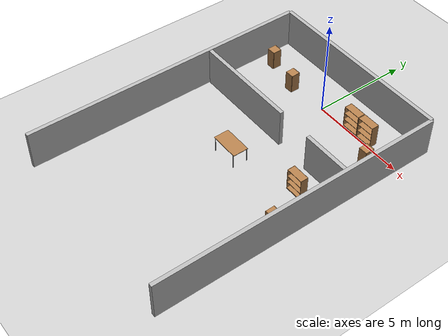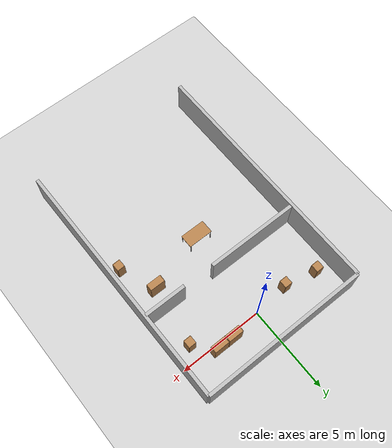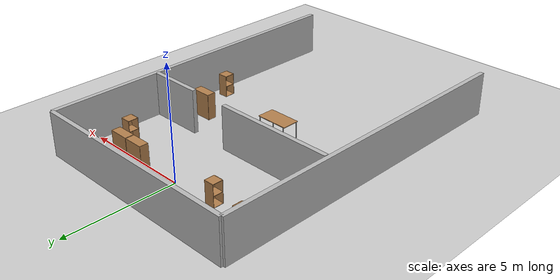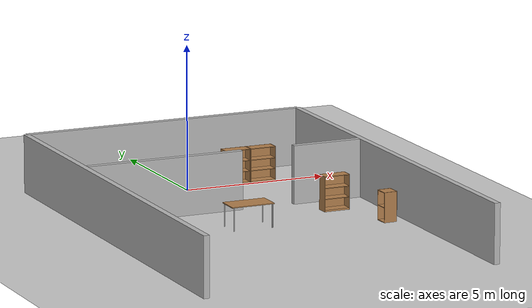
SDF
<sdf version="1.6">
 <world name="default">
  <model name="ground_plane">
   <static>1</static>
   <link name="link">
    <collision name="collision">
     <geometry><plane><normal>0 0 1</normal><size>100 100</size></plane></geometry>
     <surface><friction><ode><mu>100</mu><mu2>50</mu2></ode></friction></surface>
    </collision>
    <visual name="visual">
     <cast_shadows>0</cast_shadows>
     <geometry><plane><normal>0 0 1</normal><size>100 100</size></plane></geometry>
     <material>
      <script><uri>file://media/materials/scripts/gazebo.material</uri><name>Gazebo/Grey</name></script>
     </material>
    </visual>
    <velocity_decay><linear>0</linear><angular>0</angular></velocity_decay>
   </link>
  </model>
  <model name="wall_2_model">
   <pose>0 2 1 0 -0 0</pose>
   <static>1</static>
   <link name="wall_2_body">
    <inertial>
     <mass>1</mass>
     <inertia><ixx>1</ixx><ixy>0</ixy><ixz>0</ixz><iyy>1</iyy><iyz>0</iyz><izz>1</izz></inertia>
    </inertial>
    <collision name="collision"><geometry><box><size>10 0.2 2</size></box></geometry></collision>
    <visual name="visual"><geometry><box><size>10 0.2 2</size></box></geometry></visual>
    <velocity_decay><linear>0</linear><angular>0</angular></velocity_decay>
   </link>
  </model>
  <model name="wall_3_model">
   <pose>-5 -5.5 1 0 -0 0</pose>
   <static>1</static>
   <link name="wall_3_body">
    <inertial>
     <mass>1</mass>
     <inertia><ixx>1</ixx><ixy>0</ixy><ixz>0</ixz><iyy>1</iyy><iyz>0</iyz><izz>1</izz></inertia>
    </inertial>
    <collision name="collision"><geometry><box><size>0.2 15 2</size></box></geometry></collision>
    <visual name="visual"><geometry><box><size>0.2 15 2</size></box></geometry></visual>
    <velocity_decay><linear>0</linear><angular>0</angular></velocity_decay>
   </link>
  </model>
  <model name="wall_4_model">
   <pose>5 -5.5 1 0 -0 0</pose>
   <static>1</static>
   <link name="wall_4_body">
    <inertial>
     <mass>1</mass>
     <inertia><ixx>1</ixx><ixy>0</ixy><ixz>0</ixz><iyy>1</iyy><iyz>0</iyz><izz>1</izz></inertia>
    </inertial>
    <collision name="collision"><geometry><box><size>0.2 15 2</size></box></geometry></collision>
    <visual name="visual"><geometry><box><size>0.2 15 2</size></box></geometry></visual>
    <velocity_decay><linear>0</linear><angular>0</angular></velocity_decay>
   </link>
  </model>
  <model name="wall_5_model">
   <pose>-2.12856 -3.08419 1 0 -0 0</pose>
   <static>1</static>
   <link name="wall_5_body">
    <inertial>
     <mass>1</mass>
     <inertia><ixx>1</ixx><ixy>0</ixy><ixz>0</ixz><iyy>1</iyy><iyz>0</iyz><izz>1</izz></inertia>
    </inertial>
    <collision name="collision"><geometry><box><size>5.5 0.2 2</size></box></geometry></collision>
    <visual name="visual"><geometry><box><size>5.5 0.2 2</size></box></geometry></visual>
    <velocity_decay><linear>0</linear><angular>0</angular></velocity_decay>
   </link>
  </model>
  <model name="wall_6_model">
   <pose>3.72085 -3.12187 1 0 -0 0</pose>
   <static>1</static>
   <link name="wall_6_body">
    <inertial>
     <mass>1</mass>
     <inertia><ixx>1</ixx><ixy>0</ixy><ixz>0</ixz><iyy>1</iyy><iyz>0</iyz><izz>1</izz></inertia>
    </inertial>
    <collision name="collision"><geometry><box><size>2.5 0.2 2</size></box></geometry></collision>
    <visual name="visual"><geometry><box><size>2.5 0.2 2</size></box></geometry></visual>
    <velocity_decay><linear>0</linear><angular>0</angular></velocity_decay>
   </link>
  </model>
  <model name="cabinet">
   <static>0</static>
   <link name="cabinet_bottom_plate">
    <inertial>
     <pose>0 0 -1 0 -0 0</pose>
     <inertia><ixx>2.05</ixx><ixy>0</ixy><ixz>0</ixz><iyy>2.05</iyy><iyz>0</iyz><izz>2.05</izz></inertia>
     <mass>25</mass>
    </inertial>
    <collision name="cabinet_bottom_plate_geom">
     <pose>0 0 0.01 0 -0 0</pose>
     <geometry><box><size>0.45 0.45 0.02</size></box></geometry>
    </collision>
    <visual name="cabinet_bottom_plate_geom_visual">
     <pose>0 0 0.01 0 -0 0</pose>
     <geometry><box><size>0.45 0.45 0.02</size></box></geometry>
     <material>
      <script><uri>file://media/materials/scripts/gazebo.material</uri><name>Gazebo/Wood</name></script>
     </material>
    </visual>
    <collision name="cabinet_bottom_plate_geom_cabinet_back_plate">
     <pose>0.235 0 0.51 0 -0 0</pose>
     <geometry><box><size>0.02 0.45 1.02</size></box></geometry>
    </collision>
    <visual name="cabinet_bottom_plate_geom_cabinet_back_plate_visual">
     <pose>0.235 0 0.51 0 -0 0</pose>
     <geometry><box><size>0.02 0.45 1.02</size></box></geometry>
     <material>
      <script><uri>file://media/materials/scripts/gazebo.material</uri><name>Gazebo/Wood</name></script>
     </material>
    </visual>
    <collision name="cabinet_bottom_plate_geom_cabinet_left_plate">
     <pose>0 0.235 0.51 0 -0 0</pose>
     <geometry><box><size>0.45 0.02 1.02</size></box></geometry>
    </collision>
    <visual name="cabinet_bottom_plate_geom_cabinet_left_plate_visual">
     <pose>0 0.235 0.51 0 -0 0</pose>
     <geometry><box><size>0.45 0.02 1.02</size></box></geometry>
     <material>
      <script><uri>file://media/materials/scripts/gazebo.material</uri><name>Gazebo/Wood</name></script>
     </material>
    </visual>
    <collision name="cabinet_bottom_plate_geom_cabinet_middle_plate">
     <pose>0 0 0.51 0 -0 0</pose>
     <geometry><box><size>0.45 0.45 0.02</size></box></geometry>
    </collision>
    <visual name="cabinet_bottom_plate_geom_cabinet_middle_plate_visual">
     <pose>0 0 0.51 0 -0 0</pose>
     <geometry><box><size>0.45 0.45 0.02</size></box></geometry>
     <material>
      <script><uri>file://media/materials/scripts/gazebo.material</uri><name>Gazebo/Wood</name></script>
     </material>
    </visual>
    <collision name="cabinet_bottom_plate_geom_cabinet_right_plate">
     <pose>0 -0.235 0.51 0 -0 0</pose>
     <geometry><box><size>0.45 0.02 1.02</size></box></geometry>
    </collision>
    <visual name="cabinet_bottom_plate_geom_cabinet_right_plate_visual">
     <pose>0 -0.235 0.51 0 -0 0</pose>
     <geometry><box><size>0.45 0.02 1.02</size></box></geometry>
     <material>
      <script><uri>file://media/materials/scripts/gazebo.material</uri><name>Gazebo/Wood</name></script>
     </material>
    </visual>
    <collision name="cabinet_bottom_plate_geom_cabinet_top_plate">
     <pose>0 0 1.01 0 -0 0</pose>
     <geometry><box><size>0.45 0.45 0.02</size></box></geometry>
    </collision>
    <visual name="cabinet_bottom_plate_geom_cabinet_top_plate_visual">
     <pose>0 0 1.01 0 -0 0</pose>
     <geometry><box><size>0.45 0.45 0.02</size></box></geometry>
     <material>
      <script><uri>file://media/materials/scripts/gazebo.material</uri><name>Gazebo/Wood</name></script>
     </material>
    </visual>
    <velocity_decay><linear>0</linear><angular>0</angular></velocity_decay>
   </link>
   <pose>-2.08996 -0.165032 -0 0 -1e-06 0.009379</pose>
  </model>
  <model name="bookshelf">
   <static>0</static>
   <link name="link">
    <inertial>
     <mass>1</mass>
     <inertia><ixx>1</ixx><ixy>0</ixy><ixz>0</ixz><iyy>1</iyy><iyz>0</iyz><izz>1</izz></inertia>
    </inertial>
    <collision name="back">
     <pose>0 0.005 0.6 0 -0 0</pose>
     <geometry><box><size>0.9 0.01 1.2</size></box></geometry>
    </collision>
    <visual name="visual1">
     <pose>0 0.005 0.6 0 -0 0</pose>
     <geometry><box><size>0.9 0.01 1.2</size></box></geometry>
     <material>
      <script><uri>file://media/materials/scripts/gazebo.material</uri><name>Gazebo/Wood</name></script>
     </material>
    </visual>
    <collision name="left_side">
     <pose>0.45 -0.195 0.6 0 -0 0</pose>
     <geometry><box><size>0.02 0.4 1.2</size></box></geometry>
    </collision>
    <visual name="visual2">
     <pose>0.45 -0.195 0.6 0 -0 0</pose>
     <geometry><box><size>0.02 0.4 1.2</size></box></geometry>
     <material>
      <script><uri>file://media/materials/scripts/gazebo.material</uri><name>Gazebo/Wood</name></script>
     </material>
    </visual>
    <collision name="right_side">
     <pose>-0.45 -0.195 0.6 0 -0 0</pose>
     <geometry><box><size>0.02 0.4 1.2</size></box></geometry>
    </collision>
    <visual name="visual3">
     <pose>-0.45 -0.195 0.6 0 -0 0</pose>
     <geometry><box><size>0.02 0.4 1.2</size></box></geometry>
     <material>
      <script><uri>file://media/materials/scripts/gazebo.material</uri><name>Gazebo/Wood</name></script>
     </material>
    </visual>
    <collision name="bottom">
     <pose>0 -0.195 0.03 0 -0 0</pose>
     <geometry><box><size>0.88 0.4 0.06</size></box></geometry>
    </collision>
    <visual name="visual4">
     <pose>0 -0.195 0.03 0 -0 0</pose>
     <geometry><box><size>0.88 0.4 0.06</size></box></geometry>
     <material>
      <script><uri>file://media/materials/scripts/gazebo.material</uri><name>Gazebo/Wood</name></script>
     </material>
    </visual>
    <collision name="top">
     <pose>0 -0.195 1.19 0 -0 0</pose>
     <geometry><box><size>0.88 0.4 0.02</size></box></geometry>
    </collision>
    <visual name="visual5">
     <pose>0 -0.195 1.19 0 -0 0</pose>
     <geometry><box><size>0.88 0.4 0.02</size></box></geometry>
     <material>
      <script><uri>file://media/materials/scripts/gazebo.material</uri><name>Gazebo/Wood</name></script>
     </material>
    </visual>
    <collision name="low_shelf">
     <pose>0 -0.195 0.43 0 -0 0</pose>
     <geometry><box><size>0.88 0.4 0.02</size></box></geometry>
    </collision>
    <visual name="visual6">
     <pose>0 -0.195 0.43 0 -0 0</pose>
     <geometry><box><size>0.88 0.4 0.02</size></box></geometry>
     <material>
      <script><uri>file://media/materials/scripts/gazebo.material</uri><name>Gazebo/Wood</name></script>
     </material>
    </visual>
    <collision name="high_shelf">
     <pose>0 -0.195 0.8 0 -0 0</pose>
     <geometry><box><size>0.88 0.4 0.02</size></box></geometry>
    </collision>
    <visual name="visual7">
     <pose>0 -0.195 0.8 0 -0 0</pose>
     <geometry><box><size>0.88 0.4 0.02</size></box></geometry>
     <material>
      <script><uri>file://media/materials/scripts/gazebo.material</uri><name>Gazebo/Wood</name></script>
     </material>
    </visual>
    <velocity_decay><linear>0</linear><angular>0</angular></velocity_decay>
   </link>
   <pose>3.39483 -4.21649 0 -6e-06 0 0</pose>
  </model>
  <model name="bookshelf_0">
   <static>0</static>
   <link name="link">
    <inertial>
     <mass>1</mass>
     <inertia><ixx>1</ixx><ixy>0</ixy><ixz>0</ixz><iyy>1</iyy><iyz>0</iyz><izz>1</izz></inertia>
    </inertial>
    <collision name="back">
     <pose>0 0.005 0.6 0 -0 0</pose>
     <geometry><box><size>0.9 0.01 1.2</size></box></geometry>
    </collision>
    <visual name="visual1">
     <pose>0 0.005 0.6 0 -0 0</pose>
     <geometry><box><size>0.9 0.01 1.2</size></box></geometry>
     <material>
      <script><uri>file://media/materials/scripts/gazebo.material</uri><name>Gazebo/Wood</name></script>
     </material>
    </visual>
    <collision name="left_side">
     <pose>0.45 -0.195 0.6 0 -0 0</pose>
     <geometry><box><size>0.02 0.4 1.2</size></box></geometry>
    </collision>
    <visual name="visual2">
     <pose>0.45 -0.195 0.6 0 -0 0</pose>
     <geometry><box><size>0.02 0.4 1.2</size></box></geometry>
     <material>
      <script><uri>file://media/materials/scripts/gazebo.material</uri><name>Gazebo/Wood</name></script>
     </material>
    </visual>
    <collision name="right_side">
     <pose>-0.45 -0.195 0.6 0 -0 0</pose>
     <geometry><box><size>0.02 0.4 1.2</size></box></geometry>
    </collision>
    <visual name="visual3">
     <pose>-0.45 -0.195 0.6 0 -0 0</pose>
     <geometry><box><size>0.02 0.4 1.2</size></box></geometry>
     <material>
      <script><uri>file://media/materials/scripts/gazebo.material</uri><name>Gazebo/Wood</name></script>
     </material>
    </visual>
    <collision name="bottom">
     <pose>0 -0.195 0.03 0 -0 0</pose>
     <geometry><box><size>0.88 0.4 0.06</size></box></geometry>
    </collision>
    <visual name="visual4">
     <pose>0 -0.195 0.03 0 -0 0</pose>
     <geometry><box><size>0.88 0.4 0.06</size></box></geometry>
     <material>
      <script><uri>file://media/materials/scripts/gazebo.material</uri><name>Gazebo/Wood</name></script>
     </material>
    </visual>
    <collision name="top">
     <pose>0 -0.195 1.19 0 -0 0</pose>
     <geometry><box><size>0.88 0.4 0.02</size></box></geometry>
    </collision>
    <visual name="visual5">
     <pose>0 -0.195 1.19 0 -0 0</pose>
     <geometry><box><size>0.88 0.4 0.02</size></box></geometry>
     <material>
      <script><uri>file://media/materials/scripts/gazebo.material</uri><name>Gazebo/Wood</name></script>
     </material>
    </visual>
    <collision name="low_shelf">
     <pose>0 -0.195 0.43 0 -0 0</pose>
     <geometry><box><size>0.88 0.4 0.02</size></box></geometry>
    </collision>
    <visual name="visual6">
     <pose>0 -0.195 0.43 0 -0 0</pose>
     <geometry><box><size>0.88 0.4 0.02</size></box></geometry>
     <material>
      <script><uri>file://media/materials/scripts/gazebo.material</uri><name>Gazebo/Wood</name></script>
     </material>
    </visual>
    <collision name="high_shelf">
     <pose>0 -0.195 0.8 0 -0 0</pose>
     <geometry><box><size>0.88 0.4 0.02</size></box></geometry>
    </collision>
    <visual name="visual7">
     <pose>0 -0.195 0.8 0 -0 0</pose>
     <geometry><box><size>0.88 0.4 0.02</size></box></geometry>
     <material>
      <script><uri>file://media/materials/scripts/gazebo.material</uri><name>Gazebo/Wood</name></script>
     </material>
    </visual>
    <velocity_decay><linear>0</linear><angular>0</angular></velocity_decay>
   </link>
   <pose>1.90175 0.470127 1e-06 2e-06 -0 0</pose>
  </model>
  <model name="bookshelf_1">
   <static>0</static>
   <link name="link">
    <inertial>
     <mass>1</mass>
     <inertia><ixx>1</ixx><ixy>0</ixy><ixz>0</ixz><iyy>1</iyy><iyz>0</iyz><izz>1</izz></inertia>
    </inertial>
    <collision name="back">
     <pose>0 0.005 0.6 0 -0 0</pose>
     <geometry><box><size>0.9 0.01 1.2</size></box></geometry>
    </collision>
    <visual name="visual1">
     <pose>0 0.005 0.6 0 -0 0</pose>
     <geometry><box><size>0.9 0.01 1.2</size></box></geometry>
     <material>
      <script><uri>file://media/materials/scripts/gazebo.material</uri><name>Gazebo/Wood</name></script>
     </material>
    </visual>
    <collision name="left_side">
     <pose>0.45 -0.195 0.6 0 -0 0</pose>
     <geometry><box><size>0.02 0.4 1.2</size></box></geometry>
    </collision>
    <visual name="visual2">
     <pose>0.45 -0.195 0.6 0 -0 0</pose>
     <geometry><box><size>0.02 0.4 1.2</size></box></geometry>
     <material>
      <script><uri>file://media/materials/scripts/gazebo.material</uri><name>Gazebo/Wood</name></script>
     </material>
    </visual>
    <collision name="right_side">
     <pose>-0.45 -0.195 0.6 0 -0 0</pose>
     <geometry><box><size>0.02 0.4 1.2</size></box></geometry>
    </collision>
    <visual name="visual3">
     <pose>-0.45 -0.195 0.6 0 -0 0</pose>
     <geometry><box><size>0.02 0.4 1.2</size></box></geometry>
     <material>
      <script><uri>file://media/materials/scripts/gazebo.material</uri><name>Gazebo/Wood</name></script>
     </material>
    </visual>
    <collision name="bottom">
     <pose>0 -0.195 0.03 0 -0 0</pose>
     <geometry><box><size>0.88 0.4 0.06</size></box></geometry>
    </collision>
    <visual name="visual4">
     <pose>0 -0.195 0.03 0 -0 0</pose>
     <geometry><box><size>0.88 0.4 0.06</size></box></geometry>
     <material>
      <script><uri>file://media/materials/scripts/gazebo.material</uri><name>Gazebo/Wood</name></script>
     </material>
    </visual>
    <collision name="top">
     <pose>0 -0.195 1.19 0 -0 0</pose>
     <geometry><box><size>0.88 0.4 0.02</size></box></geometry>
    </collision>
    <visual name="visual5">
     <pose>0 -0.195 1.19 0 -0 0</pose>
     <geometry><box><size>0.88 0.4 0.02</size></box></geometry>
     <material>
      <script><uri>file://media/materials/scripts/gazebo.material</uri><name>Gazebo/Wood</name></script>
     </material>
    </visual>
    <collision name="low_shelf">
     <pose>0 -0.195 0.43 0 -0 0</pose>
     <geometry><box><size>0.88 0.4 0.02</size></box></geometry>
    </collision>
    <visual name="visual6">
     <pose>0 -0.195 0.43 0 -0 0</pose>
     <geometry><box><size>0.88 0.4 0.02</size></box></geometry>
     <material>
      <script><uri>file://media/materials/scripts/gazebo.material</uri><name>Gazebo/Wood</name></script>
     </material>
    </visual>
    <collision name="high_shelf">
     <pose>0 -0.195 0.8 0 -0 0</pose>
     <geometry><box><size>0.88 0.4 0.02</size></box></geometry>
    </collision>
    <visual name="visual7">
     <pose>0 -0.195 0.8 0 -0 0</pose>
     <geometry><box><size>0.88 0.4 0.02</size></box></geometry>
     <material>
      <script><uri>file://media/materials/scripts/gazebo.material</uri><name>Gazebo/Wood</name></script>
     </material>
    </visual>
    <velocity_decay><linear>0</linear><angular>0</angular></velocity_decay>
   </link>
   <pose>2.83824 0.467818 -1e-06 -6.6e-05 3e-06 0</pose>
  </model>
  <model name="cabinet_2">
   <static>0</static>
   <link name="cabinet_bottom_plate">
    <inertial>
     <pose>0 0 -1 0 -0 0</pose>
     <inertia><ixx>2.05</ixx><ixy>0</ixy><ixz>0</ixz><iyy>2.05</iyy><iyz>0</iyz><izz>2.05</izz></inertia>
     <mass>25</mass>
    </inertial>
    <collision name="cabinet_bottom_plate_geom">
     <pose>0 0 0.01 0 -0 0</pose>
     <geometry><box><size>0.45 0.45 0.02</size></box></geometry>
    </collision>
    <visual name="cabinet_bottom_plate_geom_visual">
     <pose>0 0 0.01 0 -0 0</pose>
     <geometry><box><size>0.45 0.45 0.02</size></box></geometry>
     <material>
      <script><uri>file://media/materials/scripts/gazebo.material</uri><name>Gazebo/Wood</name></script>
     </material>
    </visual>
    <collision name="cabinet_bottom_plate_geom_cabinet_back_plate">
     <pose>0.235 0 0.51 0 -0 0</pose>
     <geometry><box><size>0.02 0.45 1.02</size></box></geometry>
    </collision>
    <visual name="cabinet_bottom_plate_geom_cabinet_back_plate_visual">
     <pose>0.235 0 0.51 0 -0 0</pose>
     <geometry><box><size>0.02 0.45 1.02</size></box></geometry>
     <material>
      <script><uri>file://media/materials/scripts/gazebo.material</uri><name>Gazebo/Wood</name></script>
     </material>
    </visual>
    <collision name="cabinet_bottom_plate_geom_cabinet_left_plate">
     <pose>0 0.235 0.51 0 -0 0</pose>
     <geometry><box><size>0.45 0.02 1.02</size></box></geometry>
    </collision>
    <visual name="cabinet_bottom_plate_geom_cabinet_left_plate_visual">
     <pose>0 0.235 0.51 0 -0 0</pose>
     <geometry><box><size>0.45 0.02 1.02</size></box></geometry>
     <material>
      <script><uri>file://media/materials/scripts/gazebo.material</uri><name>Gazebo/Wood</name></script>
     </material>
    </visual>
    <collision name="cabinet_bottom_plate_geom_cabinet_middle_plate">
     <pose>0 0 0.51 0 -0 0</pose>
     <geometry><box><size>0.45 0.45 0.02</size></box></geometry>
    </collision>
    <visual name="cabinet_bottom_plate_geom_cabinet_middle_plate_visual">
     <pose>0 0 0.51 0 -0 0</pose>
     <geometry><box><size>0.45 0.45 0.02</size></box></geometry>
     <material>
      <script><uri>file://media/materials/scripts/gazebo.material</uri><name>Gazebo/Wood</name></script>
     </material>
    </visual>
    <collision name="cabinet_bottom_plate_geom_cabinet_right_plate">
     <pose>0 -0.235 0.51 0 -0 0</pose>
     <geometry><box><size>0.45 0.02 1.02</size></box></geometry>
    </collision>
    <visual name="cabinet_bottom_plate_geom_cabinet_right_plate_visual">
     <pose>0 -0.235 0.51 0 -0 0</pose>
     <geometry><box><size>0.45 0.02 1.02</size></box></geometry>
     <material>
      <script><uri>file://media/materials/scripts/gazebo.material</uri><name>Gazebo/Wood</name></script>
     </material>
    </visual>
    <collision name="cabinet_bottom_plate_geom_cabinet_top_plate">
     <pose>0 0 1.01 0 -0 0</pose>
     <geometry><box><size>0.45 0.45 0.02</size></box></geometry>
    </collision>
    <visual name="cabinet_bottom_plate_geom_cabinet_top_plate_visual">
     <pose>0 0 1.01 0 -0 0</pose>
     <geometry><box><size>0.45 0.45 0.02</size></box></geometry>
     <material>
      <script><uri>file://media/materials/scripts/gazebo.material</uri><name>Gazebo/Wood</name></script>
     </material>
    </visual>
    <velocity_decay><linear>0</linear><angular>0</angular></velocity_decay>
   </link>
   <pose>4.31253 -6.49522 -0 -1e-06 0 0.029125</pose>
  </model>
  <model name="table_0">
   <static>0</static>
   <link name="link">
    <collision name="surface">
     <pose>0 0 0.9 0 -0 0</pose>
     <geometry><box><size>1.5 0.8 0.03</size></box></geometry>
    </collision>
    <visual name="visual1">
     <pose>0 0 0.9 0 -0 0</pose>
     <geometry><box><size>1.5 0.8 0.03</size></box></geometry>
     <material>
      <script><uri>file://media/materials/scripts/gazebo.material</uri><name>Gazebo/Wood</name></script>
     </material>
    </visual>
    <collision name="front_left_leg">
     <pose>0.68 0.38 0.5 0 -0 0</pose>
     <geometry><cylinder><radius>0.02</radius><length>0.8</length></cylinder></geometry>
    </collision>
    <visual name="front_left_leg">
     <pose>0.68 0.38 0.5 0 -0 0</pose>
     <geometry><cylinder><radius>0.02</radius><length>0.8</length></cylinder></geometry>
     <material>
      <script><uri>file://media/materials/scripts/gazebo.material</uri><name>Gazebo/Grey</name></script>
     </material>
    </visual>
    <collision name="front_right_leg">
     <pose>0.68 -0.38 0.5 0 -0 0</pose>
     <geometry><cylinder><radius>0.02</radius><length>0.8</length></cylinder></geometry>
    </collision>
    <visual name="front_right_leg">
     <pose>0.68 -0.38 0.5 0 -0 0</pose>
     <geometry><cylinder><radius>0.02</radius><length>0.8</length></cylinder></geometry>
     <material>
      <script><uri>file://media/materials/scripts/gazebo.material</uri><name>Gazebo/Grey</name></script>
     </material>
    </visual>
    <collision name="back_right_leg">
     <pose>-0.68 -0.38 0.5 0 -0 0</pose>
     <geometry><cylinder><radius>0.02</radius><length>0.8</length></cylinder></geometry>
    </collision>
    <visual name="back_right_leg">
     <pose>-0.68 -0.38 0.5 0 -0 0</pose>
     <geometry><cylinder><radius>0.02</radius><length>0.8</length></cylinder></geometry>
     <material>
      <script><uri>file://media/materials/scripts/gazebo.material</uri><name>Gazebo/Grey</name></script>
     </material>
    </visual>
    <collision name="back_left_leg">
     <pose>-0.68 0.38 0.5 0 -0 0</pose>
     <geometry><cylinder><radius>0.02</radius><length>0.8</length></cylinder></geometry>
    </collision>
    <visual name="back_left_leg">
     <pose>-0.68 0.38 0.5 0 -0 0</pose>
     <geometry><cylinder><radius>0.02</radius><length>0.8</length></cylinder></geometry>
     <material>
      <script><uri>file://media/materials/scripts/gazebo.material</uri><name>Gazebo/Grey</name></script>
     </material>
    </visual>
    <velocity_decay><linear>0</linear><angular>0</angular></velocity_decay>
    <inertial>
     <inertia><ixx>1</ixx><ixy>0</ixy><ixz>0</ixz><iyy>1</iyy><iyz>0</iyz><izz>1</izz></inertia>
     <mass>1</mass>
    </inertial>
   </link>
   <pose>-0.163167 -5.37765 -0.100001 0 1e-06 -2.3e-05</pose>
  </model>
  <model name="cabinet_3">
   <static>0</static>
   <link name="cabinet_bottom_plate">
    <inertial>
     <pose>0 0 -1 0 -0 0</pose>
     <inertia><ixx>2.05</ixx><ixy>0</ixy><ixz>0</ixz><iyy>2.05</iyy><iyz>0</iyz><izz>2.05</izz></inertia>
     <mass>25</mass>
    </inertial>
    <collision name="cabinet_bottom_plate_geom">
     <pose>0 0 0.01 0 -0 0</pose>
     <geometry><box><size>0.45 0.45 0.02</size></box></geometry>
    </collision>
    <visual name="cabinet_bottom_plate_geom_visual">
     <pose>0 0 0.01 0 -0 0</pose>
     <geometry><box><size>0.45 0.45 0.02</size></box></geometry>
     <material>
      <script><uri>file://media/materials/scripts/gazebo.material</uri><name>Gazebo/Wood</name></script>
     </material>
    </visual>
    <collision name="cabinet_bottom_plate_geom_cabinet_back_plate">
     <pose>0.235 0 0.51 0 -0 0</pose>
     <geometry><box><size>0.02 0.45 1.02</size></box></geometry>
    </collision>
    <visual name="cabinet_bottom_plate_geom_cabinet_back_plate_visual">
     <pose>0.235 0 0.51 0 -0 0</pose>
     <geometry><box><size>0.02 0.45 1.02</size></box></geometry>
     <material>
      <script><uri>file://media/materials/scripts/gazebo.material</uri><name>Gazebo/Wood</name></script>
     </material>
    </visual>
    <collision name="cabinet_bottom_plate_geom_cabinet_left_plate">
     <pose>0 0.235 0.51 0 -0 0</pose>
     <geometry><box><size>0.45 0.02 1.02</size></box></geometry>
    </collision>
    <visual name="cabinet_bottom_plate_geom_cabinet_left_plate_visual">
     <pose>0 0.235 0.51 0 -0 0</pose>
     <geometry><box><size>0.45 0.02 1.02</size></box></geometry>
     <material>
      <script><uri>file://media/materials/scripts/gazebo.material</uri><name>Gazebo/Wood</name></script>
     </material>
    </visual>
    <collision name="cabinet_bottom_plate_geom_cabinet_middle_plate">
     <pose>0 0 0.51 0 -0 0</pose>
     <geometry><box><size>0.45 0.45 0.02</size></box></geometry>
    </collision>
    <visual name="cabinet_bottom_plate_geom_cabinet_middle_plate_visual">
     <pose>0 0 0.51 0 -0 0</pose>
     <geometry><box><size>0.45 0.45 0.02</size></box></geometry>
     <material>
      <script><uri>file://media/materials/scripts/gazebo.material</uri><name>Gazebo/Wood</name></script>
     </material>
    </visual>
    <collision name="cabinet_bottom_plate_geom_cabinet_right_plate">
     <pose>0 -0.235 0.51 0 -0 0</pose>
     <geometry><box><size>0.45 0.02 1.02</size></box></geometry>
    </collision>
    <visual name="cabinet_bottom_plate_geom_cabinet_right_plate_visual">
     <pose>0 -0.235 0.51 0 -0 0</pose>
     <geometry><box><size>0.45 0.02 1.02</size></box></geometry>
     <material>
      <script><uri>file://media/materials/scripts/gazebo.material</uri><name>Gazebo/Wood</name></script>
     </material>
    </visual>
    <collision name="cabinet_bottom_plate_geom_cabinet_top_plate">
     <pose>0 0 1.01 0 -0 0</pose>
     <geometry><box><size>0.45 0.45 0.02</size></box></geometry>
    </collision>
    <visual name="cabinet_bottom_plate_geom_cabinet_top_plate_visual">
     <pose>0 0 1.01 0 -0 0</pose>
     <geometry><box><size>0.45 0.45 0.02</size></box></geometry>
     <material>
      <script><uri>file://media/materials/scripts/gazebo.material</uri><name>Gazebo/Wood</name></script>
     </material>
    </visual>
    <velocity_decay><linear>0</linear><angular>0</angular></velocity_decay>
   </link>
   <pose>-4.01158 0.231549 -0 -1e-06 -0 -0.00011</pose>
  </model>
  <model name="cabinet_4">
   <static>0</static>
   <link name="cabinet_bottom_plate">
    <inertial>
     <pose>0 0 -1 0 -0 0</pose>
     <inertia><ixx>2.05</ixx><ixy>0</ixy><ixz>0</ixz><iyy>2.05</iyy><iyz>0</iyz><izz>2.05</izz></inertia>
     <mass>25</mass>
    </inertial>
    <collision name="cabinet_bottom_plate_geom">
     <pose>0 0 0.01 0 -0 0</pose>
     <geometry><box><size>0.45 0.45 0.02</size></box></geometry>
    </collision>
    <visual name="cabinet_bottom_plate_geom_visual">
     <pose>0 0 0.01 0 -0 0</pose>
     <geometry><box><size>0.45 0.45 0.02</size></box></geometry>
     <material>
      <script><uri>file://media/materials/scripts/gazebo.material</uri><name>Gazebo/Wood</name></script>
     </material>
    </visual>
    <collision name="cabinet_bottom_plate_geom_cabinet_back_plate">
     <pose>0.235 0 0.51 0 -0 0</pose>
     <geometry><box><size>0.02 0.45 1.02</size></box></geometry>
    </collision>
    <visual name="cabinet_bottom_plate_geom_cabinet_back_plate_visual">
     <pose>0.235 0 0.51 0 -0 0</pose>
     <geometry><box><size>0.02 0.45 1.02</size></box></geometry>
     <material>
      <script><uri>file://media/materials/scripts/gazebo.material</uri><name>Gazebo/Wood</name></script>
     </material>
    </visual>
    <collision name="cabinet_bottom_plate_geom_cabinet_left_plate">
     <pose>0 0.235 0.51 0 -0 0</pose>
     <geometry><box><size>0.45 0.02 1.02</size></box></geometry>
    </collision>
    <visual name="cabinet_bottom_plate_geom_cabinet_left_plate_visual">
     <pose>0 0.235 0.51 0 -0 0</pose>
     <geometry><box><size>0.45 0.02 1.02</size></box></geometry>
     <material>
      <script><uri>file://media/materials/scripts/gazebo.material</uri><name>Gazebo/Wood</name></script>
     </material>
    </visual>
    <collision name="cabinet_bottom_plate_geom_cabinet_middle_plate">
     <pose>0 0 0.51 0 -0 0</pose>
     <geometry><box><size>0.45 0.45 0.02</size></box></geometry>
    </collision>
    <visual name="cabinet_bottom_plate_geom_cabinet_middle_plate_visual">
     <pose>0 0 0.51 0 -0 0</pose>
     <geometry><box><size>0.45 0.45 0.02</size></box></geometry>
     <material>
      <script><uri>file://media/materials/scripts/gazebo.material</uri><name>Gazebo/Wood</name></script>
     </material>
    </visual>
    <collision name="cabinet_bottom_plate_geom_cabinet_right_plate">
     <pose>0 -0.235 0.51 0 -0 0</pose>
     <geometry><box><size>0.45 0.02 1.02</size></box></geometry>
    </collision>
    <visual name="cabinet_bottom_plate_geom_cabinet_right_plate_visual">
     <pose>0 -0.235 0.51 0 -0 0</pose>
     <geometry><box><size>0.45 0.02 1.02</size></box></geometry>
     <material>
      <script><uri>file://media/materials/scripts/gazebo.material</uri><name>Gazebo/Wood</name></script>
     </material>
    </visual>
    <collision name="cabinet_bottom_plate_geom_cabinet_top_plate">
     <pose>0 0 1.01 0 -0 0</pose>
     <geometry><box><size>0.45 0.45 0.02</size></box></geometry>
    </collision>
    <visual name="cabinet_bottom_plate_geom_cabinet_top_plate_visual">
     <pose>0 0 1.01 0 -0 0</pose>
     <geometry><box><size>0.45 0.45 0.02</size></box></geometry>
     <material>
      <script><uri>file://media/materials/scripts/gazebo.material</uri><name>Gazebo/Wood</name></script>
     </material>
    </visual>
    <velocity_decay><linear>0</linear><angular>0</angular></velocity_decay>
   </link>
   <pose>3.92473 -0.833502 -0 -1e-06 0 0.005009</pose>
  </model>
 </world>
</sdf>
